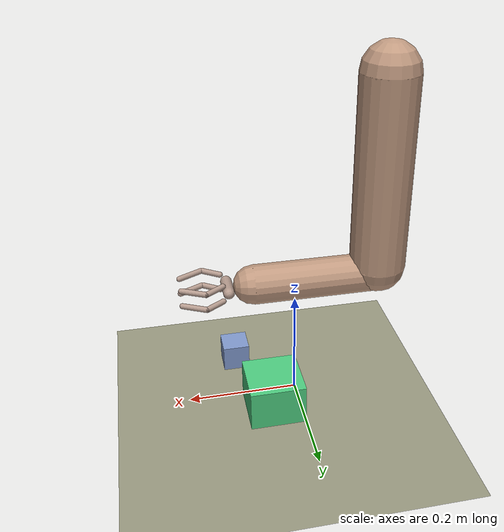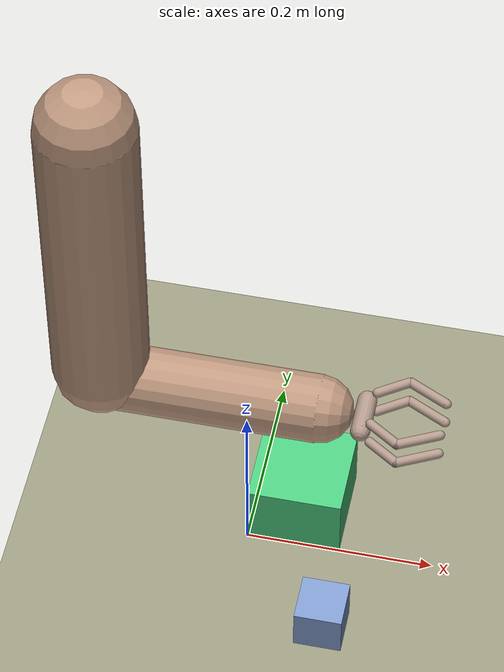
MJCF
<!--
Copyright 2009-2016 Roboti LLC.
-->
<mujoco model="arm_claw (v1.31)">
	<compiler 	inertiafromgeom="true"
				angle="radian"/>

	<size 	nuser_jnt="1"
			nuser_geom="1"/>

	<option	timestep="0.001"
			gravity="0 0 -9.8"
			viscosity="0"
			iterations="20"/>

	<asset>
		<material name="MatGnd" specular=".3" shininess=".3" reflectance="0.3" rgba=".5 .55 .5 1"/>
	</asset>

	<default>
		<joint limited="true" damping="1" stiffness="0" armature=".1" user="0"/>
		<geom solref="0.008 1" solimp="0.95 0.95 0.01" margin="0.001" user="0"/>
		<motor ctrllimited="true" ctrlrange="-1 1"/>
		<position ctrllimited="true"/>

		<default class='0'>
			<geom friction="1 0.005 0.001" rgba=".75 .6 .5 1" contype="1" conaffinity="0"/>
		</default>

		<default class='1'>
			<geom friction="1 0.005 0.001" rgba=".7 .6 .55 1" contype="1" conaffinity="0"/>
		</default>

		<default class='arm'>
			<joint damping="5"/>
		</default>
	</default>

	<worldbody>
		<light directional="true" cutoff="40" exponent="10" diffuse=".4 .4 .4" specular=".7 .7 .7" pos="0 0 1.5" dir="0 0 -1"/>
		<geom name="tableTop" material="MatGnd" type="plane" pos="0.15 0 0" size="0.4 0.6 0.5" rgba=".6 .6 .5 1" contype="1" conaffinity="1"/>

		<!--  ================= ARM ================= /-->
		<body name="upperarm" pos="-0.15 0 0.6">
			<geom class="0" type="capsule" fromto="0 0 0 0 0 -0.345" size="0.05"/>
			<joint class='arm' name="s_abduction" type="hinge" pos="0 0 0" axis="1 0 0" range="-1.57 .7" user="001"/>
			<joint class='arm' name="s_flexion" type="hinge" pos="0 0 0" axis="0 -1 0" range="-.85 1.57" user="002"/>
			<joint class='arm' name="s_rotation" type="hinge" pos="0 0 0" axis="0 0 1" range="-.85 .85" user="003"/>

			<body name="forearm" pos="0 0 -0.36">
				<geom class="0" type="capsule" fromto="0 0 0 0.225 0 0" size="0.035"/>
				<joint class='arm' name="e_flexion" type="hinge" pos="0 0 0" axis="0 -1 0" range="-1.5 1.05" user="004"/>
				<joint class='arm' name="e_pronation" type="hinge" pos="0 0 0" axis="-1 0 0" range="-1.5 1.57" user="005"/>

	<!--  ================= Palm ================= /-->

				<body name="claw" pos="0.27 0 0" quat="0 1 0 0">
					<geom class="1" name="Geomclaw" type="capsule" fromto="0 .02 0 0 -.02 0" size="0.01" />
					<joint name="w_abduction" type="hinge" pos="0 0 0" axis="0 0 1" range="-.5 .5" user="006"/>
					<joint name="w_flexion" type="hinge" pos="0 0 0" axis="0 -1 0" range="-1.05 1.05" user="007"/>

					<body name="rightclaw" pos=".01 -.02 0" >
						<geom name="rightclaw_it" class="1" type="capsule" fromto="0 0 0.015 .03 -.02 0.015" 	size="0.005" />
						<geom name="rightclaw_ot" class="1" type="capsule" fromto=".03 -.02 0.015 .07 0 0.015" size="0.005" />
						<geom name="rightclaw_ib" class="1" type="capsule" fromto="0 0 -0.015 .03 -.02 -0.015" 	size="0.005" />
						<geom name="rightclaw_ob" class="1" type="capsule" fromto=".03 -.02 -0.015 .07 0 -0.015" size="0.005" />
						<joint name="rc_close" type="hinge" pos="0 0 0" axis="0 0 1" range="-1.05 1.05" user="008"/>
					</body>

					<body name="leftclaw" pos=".01 .02 0">
						<geom name="leftclaw_it" class="1" type="capsule" fromto="0 0 0.015 .03 .02 0.015" 	size="0.005" />
						<geom name="leftclaw_ot" class="1" type="capsule" fromto=".03 .02 0.015 .07 0 0.015" size="0.005" />
						<geom name="leftclaw_ib" class="1" type="capsule" fromto="0 0 -0.015 .03 .02 -0.015" 	size="0.005" />
						<geom name="leftclaw_ob" class="1" type="capsule" fromto=".03 .02 -0.015 .07 0 -0.015" size="0.005" />
						<joint name="lc_close" type="hinge" pos="0 0 0" axis="0 0 1" range="-1.05 1.05" user="009"/>
					</body>

				</body>

			</body>

		</body>

		<!--  ================= OBJECT ================= /-->
		<body name="small_object" pos="0.2 0 0.025">
			<geom type="box" name="small_box" pos="-0.1 -0.1 0" size="0.025 0.025 0.025" rgba="0.5 0.6 0.8 1" user="1" contype="1" conaffinity="1"/>
		</body>
		<body name="large_object" pos="0.1 0 0.025">
			<geom type="box" name="large_box" pos="-0.05 0.05 0" size="0.05 0.05 0.05" rgba="0.3 0.8 0.5 1" user="1" contype="1" conaffinity="1"/>
		</body>

	</worldbody>

	<actuator>

		<!--  ================= Torque actuators ================= /-->
		<motor joint='s_abduction' 	name='As_abduction' gear="100"/>
		<motor joint='s_flexion' 	name='As_flexion' 	gear="100"/>
		<motor joint='s_rotation' 	name='As_rotation' 	gear="100"/>
		<motor joint='e_flexion' 	name='Ae_flexion' 	gear="70"/>
		<motor joint='e_pronation' 	name='Ae_pronation' gear="70"/>
		<motor joint='w_abduction' 	name='Aw_abduction' gear="30"/>
		<motor joint='w_flexion' 	name='Aw_flexion' 	gear="30"/>
		<motor joint='rc_close' 	name='Arc_close' 	gear="10"/>
		<motor joint='lc_close' 	name='Alc_close' 	gear="10"/>

		<!--  ================= Position actuators ================= /-->

	</actuator>

</mujoco>
